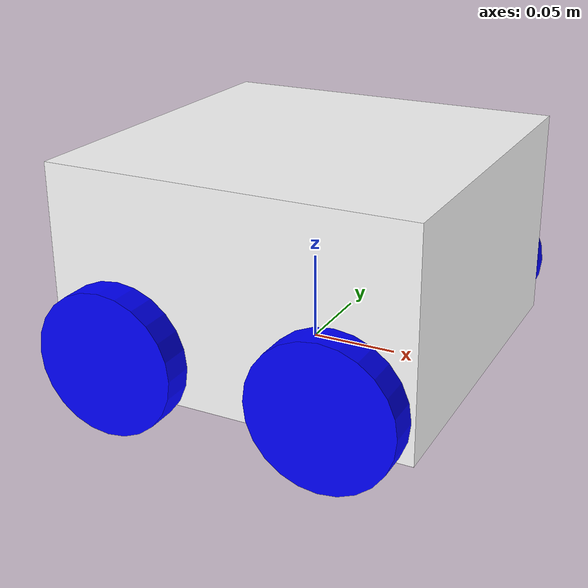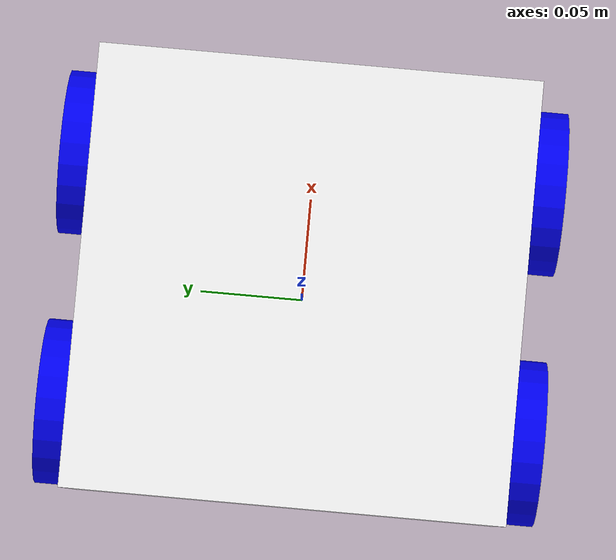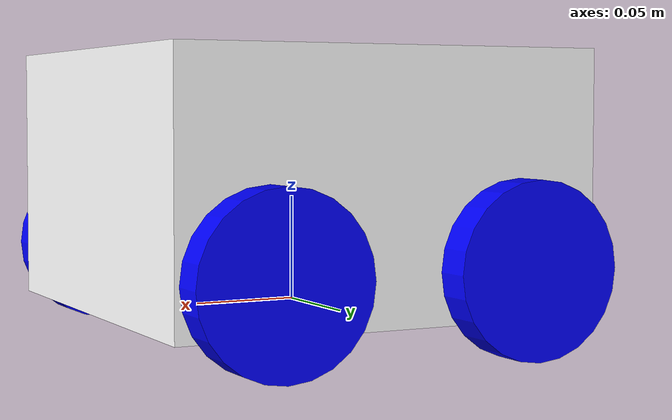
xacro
<?xml version="1.0"?>
<robot xmlns:xacro="http://www.ros.org/wiki/xacro" >
    <xacro:include filename="inertial_macros.xacro"/>

    <xacro:property name="chassis_length" value="0.205"/>
    <xacro:property name="chassis_width" value="0.205"/>
    <xacro:property name="chassis_height" value="0.122"/>
    <xacro:property name="chassis_mass" value="0.8"/>
    <xacro:property name="wheel_radius" value="0.04"/>
    <xacro:property name="wheel_thickness" value="0.017"/>
    <xacro:property name="wheel_mass" value="0.04"/>
    <xacro:property name="wheel_offset_x" value="0.061"/>
    <xacro:property name="wheel_offset_y" value="0.1125"/>
    <xacro:property name="wheel_offset_z" value="0.012"/>
    <xacro:property name="z_offset_global" value="0.01"/>

    <material name="white">
        <color rgba="1.0 1.0 1.0 1"/>
    </material>
    <material name="blue">
        <color rgba="0.0 0.0 1.0 1"/>
    </material>
    <material name="red">
        <color rgba="1.0 0.0 0.0 1"/>
    </material>

    <xacro:macro name="master_wheel" params="name x y joint_name">
        <joint name="${joint_name}" type="continuous">
            <parent link="base_link"/>
            <child link="${name}"/>
            <origin xyz="${x} ${y} ${wheel_offset_z + z_offset_global}" rpy="${pi/2} 0 0"/>
            <axis xyz="0 0 1"/>
        </joint>
        <link name="${name}">
            <visual>
                <geometry>
                    <cylinder radius="${wheel_radius}" length="${wheel_thickness}"/>
                </geometry>
                <material name="blue"/>
            </visual>
            <collision>
                <geometry>
                    <cylinder radius="${wheel_radius}" length="${wheel_thickness}"/>
                </geometry>
            </collision>
        </link>
        <gazebo reference="${name}">
            <material>Gazebo/Blue</material>
        </gazebo>
    </xacro:macro>

    <xacro:macro name="mimic_wheel" params="name x y master_joint_name">
        <joint name="${name}_joint" type="continuous">
            <parent link="base_link"/>
            <child link="${name}"/>
            <origin xyz="${x} ${y} ${wheel_offset_z + z_offset_global}" rpy="${pi/2} 0 0"/>
            <axis xyz="0 0 1"/>
            <mimic joint="${master_joint_name}" multiplier="1.0" />
        </joint>
        <link name="${name}">
            <visual>
                <geometry>
                    <cylinder radius="${wheel_radius}" length="${wheel_thickness}"/>
                </geometry>
                <material name="blue"/>
            </visual>
            <collision>
                <geometry>
                    <cylinder radius="${wheel_radius}" length="${wheel_thickness}"/>
                </geometry>
            </collision>
        </link>
        <gazebo reference="${name}">
            <material>Gazebo/Blue</material>
        </gazebo>
    </xacro:macro>

    <link name="base_link">
    </link>

    <joint name="base_footprint_joint" type="fixed">
        <parent link="base_link"/>
        <child link="base_footprint"/>
        <origin xyz="0 0 ${z_offset_global}" rpy="0 0 0"/>
    </joint>
    <link name="base_footprint">
    </link>

    <joint name="chassis_joint" type="fixed">
        <parent link="base_link"/>
        <child link="chassis"/>
        <origin xyz="0 0 ${chassis_height/2 - wheel_offset_z + z_offset_global}" rpy="0 0 0"/>
    </joint>
    <link name="chassis">
        <visual>
            <origin xyz="0 0 0"/>
            <geometry>
                <box size="${chassis_length} ${chassis_width} ${chassis_height}"/>
            </geometry>
            <material name="white"/>
        </visual>
        <collision>
            <origin xyz="0 0 0"/>
            <geometry>
                <box size="${chassis_length} ${chassis_width} ${chassis_height}"/>
            </geometry>
        </collision>
    </link>
    <gazebo reference="chassis">
        <material>Gazebo/White</material>
    </gazebo>

    <xacro:master_wheel name="wheel_1" x="${wheel_offset_x}" y="-${wheel_offset_y}" joint_name="wheel_1"/>
    <xacro:mimic_wheel name="wheel_3" x="${wheel_offset_x}" y="${wheel_offset_y}" master_joint_name="wheel_2"/>

    <xacro:master_wheel name="wheel_2" x="-${wheel_offset_x}" y="${wheel_offset_y}" joint_name="wheel_3"/>
    <xacro:mimic_wheel name="wheel_4" x="-${wheel_offset_x}" y="-${wheel_offset_y}" master_joint_name="wheel_4"/>

</robot>
